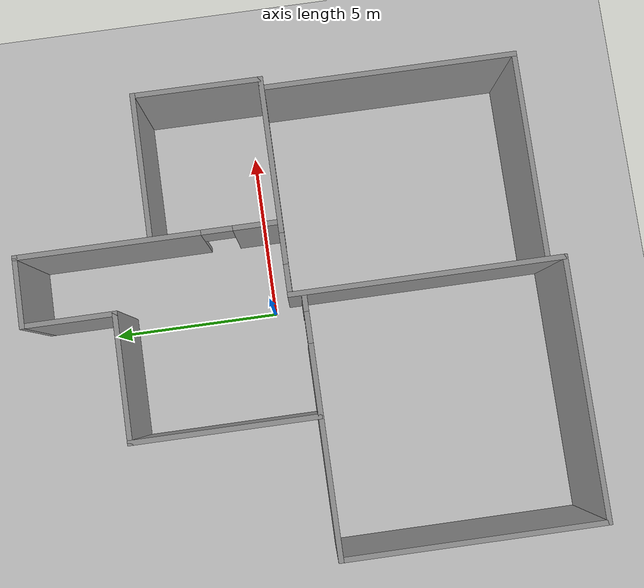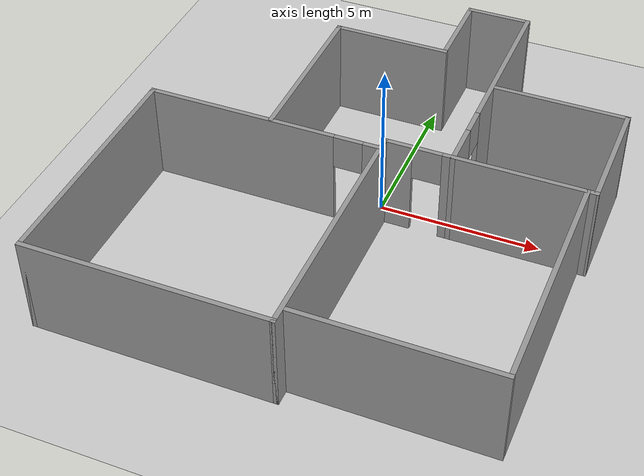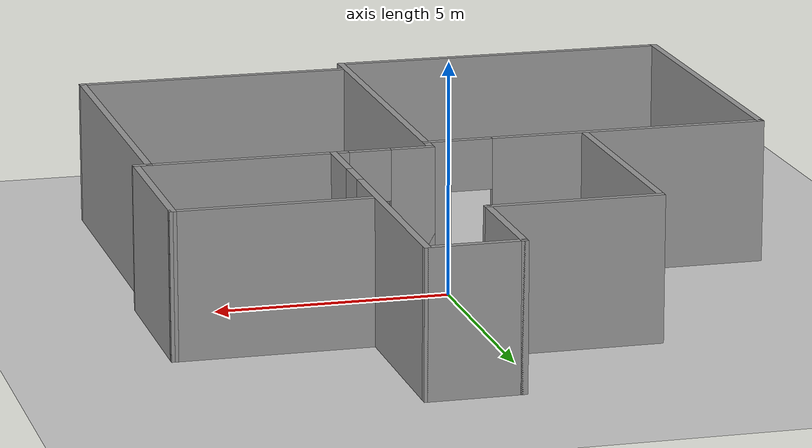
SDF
<sdf version="1.6">
 <world name="default">
  <light name="sun" type="directional">
   <pose>0 0 10 0 -0 0</pose>
   <diffuse>0.8 0.8 0.8 1</diffuse>
   <specular>0.1 0.1 0.1 1</specular>
   <attenuation>
    <range>1000</range>
    <constant>0.9</constant>
    <linear>0.01</linear>
    <quadratic>0.001</quadratic>
   </attenuation>
   <direction>-0.5 0.5 -1</direction>
  </light>
  <model name="ground_plane">
   <static>1</static>
   <link name="link">
    <collision name="collision">
     <geometry><plane><normal>0 0 1</normal><size>100 100</size></plane></geometry>
     <surface><friction><ode><mu>100</mu><mu2>50</mu2></ode></friction></surface>
    </collision>
    <visual name="visual">
     <cast_shadows>0</cast_shadows>
     <geometry><plane><normal>0 0 1</normal><size>100 100</size></plane></geometry>
     <material>
      <script><uri>file://media/materials/scripts/gazebo.material</uri><name>Gazebo/Grey</name></script>
     </material>
    </visual>
   </link>
  </model>
  <gravity>0 0 -9.8</gravity>
  <magnetic_field>6e-06 2.3e-05 -4.2e-05</magnetic_field>
  <atmosphere type="adiabatic"/>
  <physics name="default_physics" default="0" type="ode">
   <max_step_size>0.001</max_step_size>
   <real_time_factor>1</real_time_factor>
   <real_time_update_rate>1000</real_time_update_rate>
  </physics>
  <scene><ambient>0.4 0.4 0.4 1</ambient><background>0.7 0.7 0.7 1</background><shadows>1</shadows></scene>
  <spherical_coordinates>
   <surface_model>EARTH_WGS84</surface_model>
   <latitude_deg>0</latitude_deg>
   <longitude_deg>0</longitude_deg>
   <elevation>0</elevation>
   <heading_deg>0</heading_deg>
  </spherical_coordinates>
  <model name="bh9f_lab">
   <pose>-0.312437 -0.65271 0 0 -0 0</pose>
   <link name="Wall_0">
    <pose>-3.1331 -0.253 0 0 -0 3.14159</pose>
    <visual name="Wall_0_Visual_0">
     <pose>-3.46145 0 1.55 0 -0 0</pose>
     <geometry><box><size>0.601096 0.15 3.1</size></box></geometry>
     <material>
      <script><uri>file://media/materials/scripts/gazebo.material</uri><name>Gazebo/Grey</name></script>
      <ambient>1 1 1 1</ambient>
     </material>
    </visual>
    <collision name="Wall_0_Collision_0">
     <geometry><box><size>0.601096 0.15 3.1</size></box></geometry>
     <pose>-3.46145 0 1.55 0 -0 0</pose>
    </collision>
    <visual name="Wall_0_Visual_1">
     <pose>0.750548 0 1.55 0 -0 0</pose>
     <geometry><box><size>6.0229 0.15 3.1</size></box></geometry>
     <material>
      <script><uri>file://media/materials/scripts/gazebo.material</uri><name>Gazebo/Grey</name></script>
      <ambient>1 1 1 1</ambient>
     </material>
    </visual>
    <collision name="Wall_0_Collision_1">
     <geometry><box><size>6.0229 0.15 3.1</size></box></geometry>
     <pose>0.750548 0 1.55 0 -0 0</pose>
    </collision>
    <visual name="Wall_0_Visual_3">
     <pose>-2.7109 0 2.55 0 -0 0</pose>
     <geometry><box><size>0.9 0.15 1.1</size></box></geometry>
     <material>
      <script><uri>file://media/materials/scripts/gazebo.material</uri><name>Gazebo/Grey</name></script>
      <ambient>1 1 1 1</ambient>
     </material>
    </visual>
    <collision name="Wall_0_Collision_3">
     <geometry><box><size>0.9 0.15 1.1</size></box></geometry>
     <pose>-2.7109 0 2.55 0 -0 0</pose>
    </collision>
   </link>
   <link name="Wall_12">
    <collision name="Wall_12_Collision">
     <geometry><box><size>7.44 0.15 3.1</size></box></geometry>
     <pose>0 0 1.55 0 -0 0</pose>
    </collision>
    <visual name="Wall_12_Visual">
     <pose>0 0 1.55 0 -0 0</pose>
     <geometry><box><size>7.44 0.15 3.1</size></box></geometry>
     <material>
      <script><uri>file://media/materials/scripts/gazebo.material</uri><name>Gazebo/Grey</name></script>
      <ambient>1 1 1 1</ambient>
     </material>
    </visual>
    <pose>6.5499 -3.516 0 0 0 -1.5708</pose>
   </link>
   <link name="Wall_14">
    <collision name="Wall_14_Collision">
     <geometry><box><size>6 0.15 3.1</size></box></geometry>
     <pose>0 0 1.55 0 -0 0</pose>
    </collision>
    <visual name="Wall_14_Visual">
     <pose>0 0 1.55 0 -0 0</pose>
     <geometry><box><size>6 0.15 3.1</size></box></geometry>
     <material>
      <script><uri>file://media/materials/scripts/gazebo.material</uri><name>Gazebo/Grey</name></script>
      <ambient>1 1 1 1</ambient>
     </material>
    </visual>
    <pose>3.6249 -7.161 0 0 -0 3.14159</pose>
   </link>
   <link name="Wall_16">
    <collision name="Wall_16_Collision">
     <geometry><box><size>3.83 0.15 3.1</size></box></geometry>
     <pose>0 0 1.55 0 -0 0</pose>
    </collision>
    <visual name="Wall_16_Visual">
     <pose>0 0 1.55 0 -0 0</pose>
     <geometry><box><size>3.83 0.15 3.1</size></box></geometry>
     <material>
      <script><uri>file://media/materials/scripts/gazebo.material</uri><name>Gazebo/Grey</name></script>
      <ambient>1 1 1 1</ambient>
     </material>
    </visual>
    <pose>6.8149 1.975 0 0 -0 1.56808</pose>
   </link>
   <link name="Wall_18">
    <collision name="Wall_18_Collision">
     <geometry><box><size>4.33 0.15 3.1</size></box></geometry>
     <pose>0 0 1.55 0 -0 0</pose>
    </collision>
    <visual name="Wall_18_Visual">
     <pose>0 0 1.55 0 -0 0</pose>
     <geometry><box><size>4.33 0.15 3.1</size></box></geometry>
     <material>
      <script><uri>file://media/materials/scripts/gazebo.material</uri><name>Gazebo/Grey</name></script>
      <ambient>1 1 1 1</ambient>
     </material>
    </visual>
    <pose>4.7299 3.815 0 0 -0 3.14159</pose>
   </link>
   <link name="Wall_2">
    <collision name="Wall_2_Collision">
     <geometry><box><size>7.542 0.15 3.1</size></box></geometry>
     <pose>0 0 1.55 0 -0 0</pose>
    </collision>
    <visual name="Wall_2_Visual">
     <pose>0 0 1.55 0 -0 0</pose>
     <geometry><box><size>7.542 0.15 3.1</size></box></geometry>
     <material>
      <script><uri>file://media/materials/scripts/gazebo.material</uri><name>Gazebo/Grey</name></script>
      <ambient>1 1 1 1</ambient>
     </material>
    </visual>
    <pose>-6.8201 -3.949 0 0 0 -1.5708</pose>
   </link>
   <link name="Wall_20">
    <pose>2.6379 3.89 0 0 -0 1.5708</pose>
    <visual name="Wall_20_Visual_0">
     <pose>-3.11825 0 1.55 0 -0 0</pose>
     <geometry><box><size>1.42351 0.15 3.1</size></box></geometry>
     <material>
      <script><uri>file://media/materials/scripts/gazebo.material</uri><name>Gazebo/Grey</name></script>
      <ambient>1 1 1 1</ambient>
     </material>
    </visual>
    <collision name="Wall_20_Collision_0">
     <geometry><box><size>1.42351 0.15 3.1</size></box></geometry>
     <pose>-3.11825 0 1.55 0 -0 0</pose>
    </collision>
    <visual name="Wall_20_Visual_1">
     <pose>1.16175 0 1.55 0 -0 0</pose>
     <geometry><box><size>5.33649 0.15 3.1</size></box></geometry>
     <material>
      <script><uri>file://media/materials/scripts/gazebo.material</uri><name>Gazebo/Grey</name></script>
      <ambient>1 1 1 1</ambient>
     </material>
    </visual>
    <collision name="Wall_20_Collision_1">
     <geometry><box><size>5.33649 0.15 3.1</size></box></geometry>
     <pose>1.16175 0 1.55 0 -0 0</pose>
    </collision>
    <visual name="Wall_20_Visual_3">
     <pose>-1.95649 0 2.55 0 -0 0</pose>
     <geometry><box><size>0.9 0.15 1.1</size></box></geometry>
     <material>
      <script><uri>file://media/materials/scripts/gazebo.material</uri><name>Gazebo/Grey</name></script>
      <ambient>1 1 1 1</ambient>
     </material>
    </visual>
    <collision name="Wall_20_Collision_3">
     <geometry><box><size>0.9 0.15 1.1</size></box></geometry>
     <pose>-1.95649 0 2.55 0 -0 0</pose>
    </collision>
   </link>
   <link name="Wall_24">
    <collision name="Wall_24_Collision">
     <geometry><box><size>2.089 0.15 3.1</size></box></geometry>
     <pose>0 0 1.55 0 -0 0</pose>
    </collision>
    <visual name="Wall_24_Visual">
     <pose>0 0 1.55 0 -0 0</pose>
     <geometry><box><size>2.089 0.15 3.1</size></box></geometry>
     <material>
      <script><uri>file://media/materials/scripts/gazebo.material</uri><name>Gazebo/Grey</name></script>
      <ambient>1 1 1 1</ambient>
     </material>
    </visual>
    <pose>1.6684 7.645 0 0 -0 3.14159</pose>
   </link>
   <link name="Wall_26">
    <collision name="Wall_26_Collision">
     <geometry><box><size>2.75 0.15 3.1</size></box></geometry>
     <pose>0 0 1.55 0 -0 0</pose>
    </collision>
    <visual name="Wall_26_Visual">
     <pose>0 0 1.55 0 -0 0</pose>
     <geometry><box><size>2.75 0.15 3.1</size></box></geometry>
     <material>
      <script><uri>file://media/materials/scripts/gazebo.material</uri><name>Gazebo/Grey</name></script>
      <ambient>1 1 1 1</ambient>
     </material>
    </visual>
    <pose>0.698898 6.345 0 0 0 -1.5708</pose>
   </link>
   <link name="Wall_28">
    <collision name="Wall_28_Collision">
     <geometry><box><size>3.75 0.15 3.1</size></box></geometry>
     <pose>0 0 1.55 0 -0 0</pose>
    </collision>
    <visual name="Wall_28_Visual">
     <pose>0 0 1.55 0 -0 0</pose>
     <geometry><box><size>3.75 0.15 3.1</size></box></geometry>
     <material>
      <script><uri>file://media/materials/scripts/gazebo.material</uri><name>Gazebo/Grey</name></script>
      <ambient>1 1 1 1</ambient>
     </material>
    </visual>
    <pose>-1.1011 5.045 0 0 -0 3.14159</pose>
   </link>
   <link name="Wall_30">
    <collision name="Wall_30_Collision">
     <geometry><box><size>5.41 0.15 3.1</size></box></geometry>
     <pose>0 0 1.55 0 -0 0</pose>
    </collision>
    <visual name="Wall_30_Visual">
     <pose>0 0 1.55 0 -0 0</pose>
     <geometry><box><size>5.41 0.15 3.1</size></box></geometry>
     <material>
      <script><uri>file://media/materials/scripts/gazebo.material</uri><name>Gazebo/Grey</name></script>
      <ambient>1 1 1 1</ambient>
     </material>
    </visual>
    <pose>-2.9011 2.415 0 0 0 -1.5708</pose>
   </link>
   <link name="Wall_4">
    <collision name="Wall_4_Collision">
     <geometry><box><size>7.53 0.15 3.1</size></box></geometry>
     <pose>0 0 1.55 0 -0 0</pose>
    </collision>
    <visual name="Wall_4_Visual">
     <pose>0 0 1.55 0 -0 0</pose>
     <geometry><box><size>7.53 0.15 3.1</size></box></geometry>
     <material>
      <script><uri>file://media/materials/scripts/gazebo.material</uri><name>Gazebo/Grey</name></script>
      <ambient>1 1 1 1</ambient>
     </material>
    </visual>
    <pose>-3.1301 -7.645 0 0 -0 0</pose>
   </link>
   <link name="Wall_6">
    <collision name="Wall_6_Collision">
     <geometry><box><size>7.93 0.15 3.1</size></box></geometry>
     <pose>0 0 1.55 0 -0 0</pose>
    </collision>
    <visual name="Wall_6_Visual">
     <pose>0 0 1.55 0 -0 0</pose>
     <geometry><box><size>7.93 0.15 3.1</size></box></geometry>
     <material>
      <script><uri>file://media/materials/scripts/gazebo.material</uri><name>Gazebo/Grey</name></script>
      <ambient>1 1 1 1</ambient>
     </material>
    </visual>
    <pose>0.559898 -3.755 0 0 -0 1.5708</pose>
   </link>
   <link name="Wall_8">
    <pose>3.6849 0.135 0 0 -0 0</pose>
    <visual name="Wall_8_Visual_0">
     <pose>-2.73161 0 1.55 0 -0 0</pose>
     <geometry><box><size>0.936778 0.15 3.1</size></box></geometry>
     <material>
      <script><uri>file://media/materials/scripts/gazebo.material</uri><name>Gazebo/Grey</name></script>
      <ambient>1 1 1 1</ambient>
     </material>
    </visual>
    <collision name="Wall_8_Collision_0">
     <geometry><box><size>0.936778 0.15 3.1</size></box></geometry>
     <pose>-2.73161 0 1.55 0 -0 0</pose>
    </collision>
    <visual name="Wall_8_Visual_1">
     <pose>0.918389 0 1.55 0 -0 0</pose>
     <geometry><box><size>4.56322 0.15 3.1</size></box></geometry>
     <material>
      <script><uri>file://media/materials/scripts/gazebo.material</uri><name>Gazebo/Grey</name></script>
      <ambient>1 1 1 1</ambient>
     </material>
    </visual>
    <collision name="Wall_8_Collision_1">
     <geometry><box><size>4.56322 0.15 3.1</size></box></geometry>
     <pose>0.918389 0 1.55 0 -0 0</pose>
    </collision>
    <visual name="Wall_8_Visual_3">
     <pose>-1.81322 0 2.55 0 -0 0</pose>
     <geometry><box><size>0.9 0.15 1.1</size></box></geometry>
     <material>
      <script><uri>file://media/materials/scripts/gazebo.material</uri><name>Gazebo/Grey</name></script>
      <ambient>1 1 1 1</ambient>
     </material>
    </visual>
    <collision name="Wall_8_Collision_3">
     <geometry><box><size>0.9 0.15 1.1</size></box></geometry>
     <pose>-1.81322 0 2.55 0 -0 0</pose>
    </collision>
   </link>
   <static>1</static>
  </model>
 </world>
</sdf>
